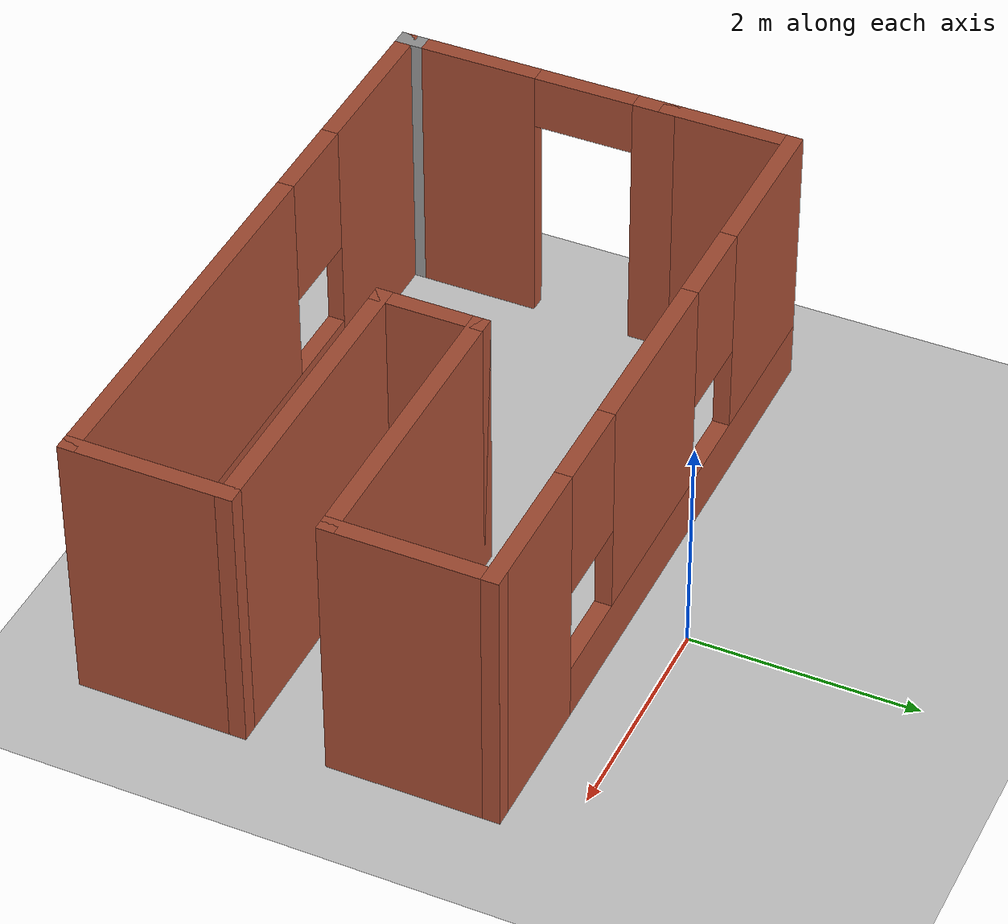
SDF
<sdf version="1.6">
 <world name="default">
  <light name="sun" type="directional">
   <pose>0 0 10 0 -0 0</pose>
   <diffuse>0.8 0.8 0.8 1</diffuse>
   <specular>0.2 0.2 0.2 1</specular>
   <attenuation>
    <range>1000</range>
    <constant>0.9</constant>
    <linear>0.01</linear>
    <quadratic>0.001</quadratic>
   </attenuation>
   <direction>-0.5 0.1 -0.9</direction>
  </light>
  <model name="ground_plane">
   <static>1</static>
   <link name="link">
    <collision name="collision">
     <geometry><plane><normal>0 0 1</normal><size>100 100</size></plane></geometry>
     <surface><friction><ode><mu>100</mu><mu2>50</mu2></ode></friction></surface>
    </collision>
    <visual name="visual">
     <cast_shadows>0</cast_shadows>
     <geometry><plane><normal>0 0 1</normal><size>100 100</size></plane></geometry>
     <material>
      <script><uri>file://media/materials/scripts/gazebo.material</uri><name>Gazebo/Grey</name></script>
     </material>
    </visual>
   </link>
  </model>
  <gravity>0 0 -9.8</gravity>
  <magnetic_field>6e-06 2.3e-05 -4.2e-05</magnetic_field>
  <atmosphere type="adiabatic"/>
  <physics name="default_physics" default="0" type="ode">
   <max_step_size>0.001</max_step_size>
   <real_time_factor>1</real_time_factor>
   <real_time_update_rate>1000</real_time_update_rate>
  </physics>
  <scene><ambient>0.4 0.4 0.4 1</ambient><background>0.7 0.7 0.7 1</background><shadows>1</shadows></scene>
  <spherical_coordinates>
   <surface_model>EARTH_WGS84</surface_model>
   <latitude_deg>0</latitude_deg>
   <longitude_deg>0</longitude_deg>
   <elevation>0</elevation>
   <heading_deg>0</heading_deg>
  </spherical_coordinates>
  <model name="edge">
   <pose>-0.485 -2.355 0 0 -0 0</pose>
   <link name="Wall_0">
    <pose>-2.925 -0.5 0 0 0 -1.5708</pose>
    <visual name="Wall_0_Visual_0">
     <pose>-1.0575 0 1.25 0 -0 0</pose>
     <geometry><box><size>0.385 0.15 2.5</size></box></geometry>
     <material>
      <script><uri>file://media/materials/scripts/gazebo.material</uri><name>Gazebo/Bricks</name></script>
      <ambient>1 1 1 1</ambient>
     </material>
     <meta><layer>0</layer></meta>
    </visual>
    <collision name="Wall_0_Collision_0">
     <geometry><box><size>0.385 0.15 2.5</size></box></geometry>
     <pose>-1.0575 0 1.25 0 -0 0</pose>
    </collision>
    <visual name="Wall_0_Visual_1">
     <pose>0.6425 0 1.25 0 -0 0</pose>
     <geometry><box><size>1.215 0.15 2.5</size></box></geometry>
     <material>
      <script><uri>file://media/materials/scripts/gazebo.material</uri><name>Gazebo/Bricks</name></script>
      <ambient>1 1 1 1</ambient>
     </material>
     <meta><layer>0</layer></meta>
    </visual>
    <collision name="Wall_0_Collision_1">
     <geometry><box><size>1.215 0.15 2.5</size></box></geometry>
     <pose>0.6425 0 1.25 0 -0 0</pose>
    </collision>
    <visual name="Wall_0_Visual_2">
     <pose>-0.415 0 2.25 0 -0 0</pose>
     <geometry><box><size>0.9 0.15 0.5</size></box></geometry>
     <material>
      <script><uri>file://media/materials/scripts/gazebo.material</uri><name>Gazebo/Bricks</name></script>
      <ambient>1 1 1 1</ambient>
     </material>
     <meta><layer>0</layer></meta>
    </visual>
    <collision name="Wall_0_Collision_2">
     <geometry><box><size>0.9 0.15 0.5</size></box></geometry>
     <pose>-0.415 0 2.25 0 -0 0</pose>
    </collision>
   </link>
   <link name="Wall_1">
    <collision name="Wall_1_Collision">
     <geometry><box><size>0.25 0.15 2.5</size></box></geometry>
     <pose>0 0 1.25 0 -0 0</pose>
    </collision>
    <visual name="Wall_1_Visual">
     <pose>0 0 1.25 0 -0 0</pose>
     <geometry><box><size>0.25 0.15 2.5</size></box></geometry>
     <material>
      <script><uri>file://media/materials/scripts/gazebo.material</uri><name>Gazebo/Grey</name></script>
      <ambient>1 1 1 1</ambient>
     </material>
     <meta><layer>0</layer></meta>
    </visual>
    <pose>-2.925 -1.725 0 0 0 -1.5708</pose>
   </link>
   <link name="Wall_2">
    <pose>0 -1.775 0 0 -0 0</pose>
    <visual name="Wall_2_Visual_0">
     <pose>-2.2275 0 1.25 0 -0 0</pose>
     <geometry><box><size>1.545 0.15 2.5</size></box></geometry>
     <material>
      <script><uri>file://media/materials/scripts/gazebo.material</uri><name>Gazebo/Bricks</name></script>
      <ambient>1 1 1 1</ambient>
     </material>
     <meta><layer>0</layer></meta>
    </visual>
    <collision name="Wall_2_Collision_0">
     <geometry><box><size>1.545 0.15 2.5</size></box></geometry>
     <pose>-2.2275 0 1.25 0 -0 0</pose>
    </collision>
    <visual name="Wall_2_Visual_1">
     <pose>0.7725 0 0.25 0 -0 0</pose>
     <geometry><box><size>4.455 0.15 0.5</size></box></geometry>
     <material>
      <script><uri>file://media/materials/scripts/gazebo.material</uri><name>Gazebo/Bricks</name></script>
      <ambient>1 1 1 1</ambient>
     </material>
     <meta><layer>0</layer></meta>
    </visual>
    <collision name="Wall_2_Collision_1">
     <geometry><box><size>4.455 0.15 0.5</size></box></geometry>
     <pose>0.7725 0 0.25 0 -0 0</pose>
    </collision>
    <visual name="Wall_2_Visual_2">
     <pose>1.1725 0 1.5 0 -0 0</pose>
     <geometry><box><size>3.655 0.15 2</size></box></geometry>
     <material>
      <script><uri>file://media/materials/scripts/gazebo.material</uri><name>Gazebo/Bricks</name></script>
      <ambient>1 1 1 1</ambient>
     </material>
     <meta><layer>0</layer></meta>
    </visual>
    <collision name="Wall_2_Collision_2">
     <geometry><box><size>3.655 0.15 2</size></box></geometry>
     <pose>1.1725 0 1.5 0 -0 0</pose>
    </collision>
    <visual name="Wall_2_Visual_3">
     <pose>-1.055 0 1.9 0 -0 0</pose>
     <geometry><box><size>0.8 0.15 1.2</size></box></geometry>
     <material>
      <script><uri>file://media/materials/scripts/gazebo.material</uri><name>Gazebo/Bricks</name></script>
      <ambient>1 1 1 1</ambient>
     </material>
     <meta><layer>0</layer></meta>
    </visual>
    <collision name="Wall_2_Collision_3">
     <geometry><box><size>0.8 0.15 1.2</size></box></geometry>
     <pose>-1.055 0 1.9 0 -0 0</pose>
    </collision>
   </link>
   <link name="Wall_3">
    <collision name="Wall_3_Collision">
     <geometry><box><size>1.5 0.15 2.5</size></box></geometry>
     <pose>0 0 1.25 0 -0 0</pose>
    </collision>
    <visual name="Wall_3_Visual">
     <pose>0 0 1.25 0 -0 0</pose>
     <geometry><box><size>1.5 0.15 2.5</size></box></geometry>
     <material>
      <script><uri>file://media/materials/scripts/gazebo.material</uri><name>Gazebo/Bricks</name></script>
      <ambient>1 1 1 1</ambient>
     </material>
     <meta><layer>0</layer></meta>
    </visual>
    <pose>2.925 -1.1 0 0 -0 1.5708</pose>
   </link>
   <link name="Wall_4">
    <collision name="Wall_4_Collision">
     <geometry><box><size>2.75 0.15 2.5</size></box></geometry>
     <pose>0 0 1.25 0 -0 0</pose>
    </collision>
    <visual name="Wall_4_Visual">
     <pose>0 0 1.25 0 -0 0</pose>
     <geometry><box><size>2.75 0.15 2.5</size></box></geometry>
     <material>
      <script><uri>file://media/materials/scripts/gazebo.material</uri><name>Gazebo/Bricks</name></script>
      <ambient>1 1 1 1</ambient>
     </material>
     <meta><layer>0</layer></meta>
    </visual>
    <pose>1.625 -0.425 0 0 -0 3.14159</pose>
   </link>
   <link name="Wall_5">
    <collision name="Wall_5_Collision">
     <geometry><box><size>1 0.15 2.5</size></box></geometry>
     <pose>0 0 1.25 0 -0 0</pose>
    </collision>
    <visual name="Wall_5_Visual">
     <pose>0 0 1.25 0 -0 0</pose>
     <geometry><box><size>1 0.15 2.5</size></box></geometry>
     <material>
      <script><uri>file://media/materials/scripts/gazebo.material</uri><name>Gazebo/Bricks</name></script>
      <ambient>1 1 1 1</ambient>
     </material>
     <meta><layer>0</layer></meta>
    </visual>
    <pose>0.325 0 0 0 -0 1.5708</pose>
   </link>
   <link name="Wall_6">
    <collision name="Wall_6_Collision">
     <geometry><box><size>2.75 0.15 2.5</size></box></geometry>
     <pose>0 0 1.25 0 -0 0</pose>
    </collision>
    <visual name="Wall_6_Visual">
     <pose>0 0 1.25 0 -0 0</pose>
     <geometry><box><size>2.75 0.15 2.5</size></box></geometry>
     <material>
      <script><uri>file://media/materials/scripts/gazebo.material</uri><name>Gazebo/Bricks</name></script>
      <ambient>1 1 1 1</ambient>
     </material>
     <meta><layer>0</layer></meta>
    </visual>
    <pose>1.625 0.425 0 0 -0 0</pose>
   </link>
   <link name="Wall_7">
    <collision name="Wall_7_Collision">
     <geometry><box><size>1.5 0.15 2.5</size></box></geometry>
     <pose>0 0 1.25 0 -0 0</pose>
    </collision>
    <visual name="Wall_7_Visual">
     <pose>0 0 1.25 0 -0 0</pose>
     <geometry><box><size>1.5 0.15 2.5</size></box></geometry>
     <material>
      <script><uri>file://media/materials/scripts/gazebo.material</uri><name>Gazebo/Bricks</name></script>
      <ambient>1 1 1 1</ambient>
     </material>
     <meta><layer>0</layer></meta>
    </visual>
    <pose>2.925 1.1 0 0 -0 1.5708</pose>
   </link>
   <link name="Wall_8">
    <pose>0 1.775 0 0 -0 3.14159</pose>
    <visual name="Wall_8_Visual_0">
     <pose>-2.3425 0 1.25 0 -0 0</pose>
     <geometry><box><size>1.315 0.15 2.5</size></box></geometry>
     <material>
      <script><uri>file://media/materials/scripts/gazebo.material</uri><name>Gazebo/Bricks</name></script>
      <ambient>1 1 1 1</ambient>
     </material>
     <meta><layer>0</layer></meta>
    </visual>
    <collision name="Wall_8_Collision_0">
     <geometry><box><size>1.315 0.15 2.5</size></box></geometry>
     <pose>-2.3425 0 1.25 0 -0 0</pose>
    </collision>
    <visual name="Wall_8_Visual_1">
     <pose>0.6575 0 0.25 0 -0 0</pose>
     <geometry><box><size>4.685 0.15 0.5</size></box></geometry>
     <material>
      <script><uri>file://media/materials/scripts/gazebo.material</uri><name>Gazebo/Bricks</name></script>
      <ambient>1 1 1 1</ambient>
     </material>
     <meta><layer>0</layer></meta>
    </visual>
    <collision name="Wall_8_Collision_1">
     <geometry><box><size>4.685 0.15 0.5</size></box></geometry>
     <pose>0.6575 0 0.25 0 -0 0</pose>
    </collision>
    <visual name="Wall_8_Visual_2">
     <pose>-0.065 0 1.5 0 -0 0</pose>
     <geometry><box><size>1.64 0.15 2</size></box></geometry>
     <material>
      <script><uri>file://media/materials/scripts/gazebo.material</uri><name>Gazebo/Bricks</name></script>
      <ambient>1 1 1 1</ambient>
     </material>
     <meta><layer>0</layer></meta>
    </visual>
    <collision name="Wall_8_Collision_2">
     <geometry><box><size>1.64 0.15 2</size></box></geometry>
     <pose>-0.065 0 1.5 0 -0 0</pose>
    </collision>
    <visual name="Wall_8_Visual_3">
     <pose>2.2775 0 1.5 0 -0 0</pose>
     <geometry><box><size>1.445 0.15 2</size></box></geometry>
     <material>
      <script><uri>file://media/materials/scripts/gazebo.material</uri><name>Gazebo/Bricks</name></script>
      <ambient>1 1 1 1</ambient>
     </material>
     <meta><layer>0</layer></meta>
    </visual>
    <collision name="Wall_8_Collision_3">
     <geometry><box><size>1.445 0.15 2</size></box></geometry>
     <pose>2.2775 0 1.5 0 -0 0</pose>
    </collision>
    <visual name="Wall_8_Visual_4">
     <pose>-1.285 0 1.9 0 -0 0</pose>
     <geometry><box><size>0.8 0.15 1.2</size></box></geometry>
     <material>
      <script><uri>file://media/materials/scripts/gazebo.material</uri><name>Gazebo/Bricks</name></script>
      <ambient>1 1 1 1</ambient>
     </material>
     <meta><layer>0</layer></meta>
    </visual>
    <collision name="Wall_8_Collision_4">
     <geometry><box><size>0.8 0.15 1.2</size></box></geometry>
     <pose>-1.285 0 1.9 0 -0 0</pose>
    </collision>
    <visual name="Wall_8_Visual_5">
     <pose>1.155 0 1.9 0 -0 0</pose>
     <geometry><box><size>0.8 0.15 1.2</size></box></geometry>
     <material>
      <script><uri>file://media/materials/scripts/gazebo.material</uri><name>Gazebo/Bricks</name></script>
      <ambient>1 1 1 1</ambient>
     </material>
     <meta><layer>0</layer></meta>
    </visual>
    <collision name="Wall_8_Collision_5">
     <geometry><box><size>0.8 0.15 1.2</size></box></geometry>
     <pose>1.155 0 1.9 0 -0 0</pose>
    </collision>
   </link>
   <link name="Wall_9">
    <collision name="Wall_9_Collision">
     <geometry><box><size>1.25 0.15 2.5</size></box></geometry>
     <pose>0 0 1.25 0 -0 0</pose>
    </collision>
    <visual name="Wall_9_Visual">
     <pose>0 0 1.25 0 -0 0</pose>
     <geometry><box><size>1.25 0.15 2.5</size></box></geometry>
     <material>
      <script><uri>file://media/materials/scripts/gazebo.material</uri><name>Gazebo/Bricks</name></script>
      <ambient>1 1 1 1</ambient>
     </material>
     <meta><layer>0</layer></meta>
    </visual>
    <pose>-2.925 1.225 0 0 0 -1.5708</pose>
   </link>
   <static>1</static>
  </model>
 </world>
</sdf>
